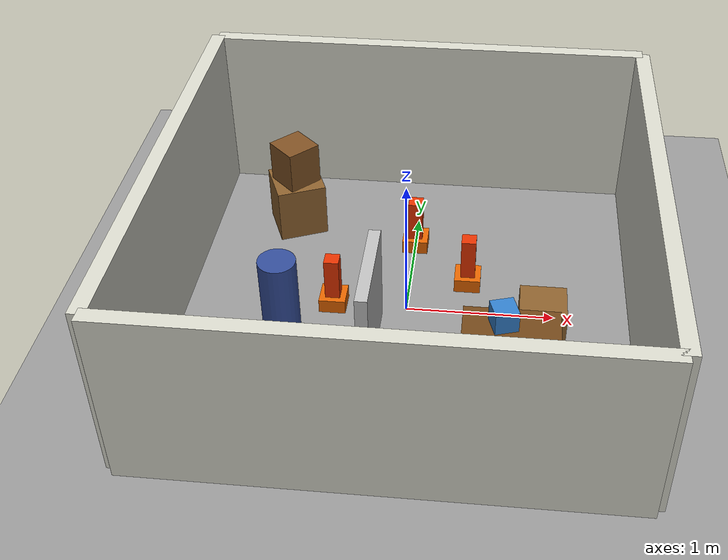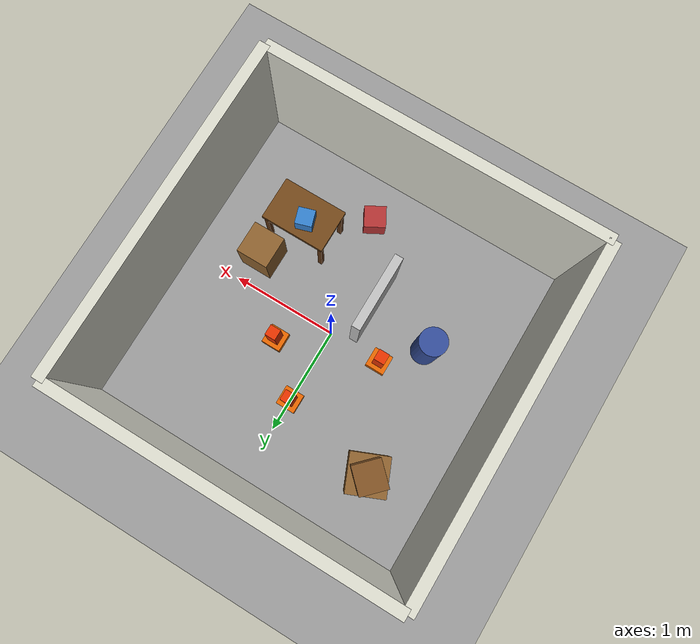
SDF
<?xml version="1.0" ?>
<sdf version="1.6">
  <world name="small_room">

    <physics name="default_physics" type="ode">
      <max_step_size>0.004</max_step_size>
      <real_time_factor>1.0</real_time_factor>
      <real_time_update_rate>250</real_time_update_rate>
    </physics>

    <plugin filename="ignition-gazebo-physics-system"
      name="ignition::gazebo::systems::Physics"/>
    <plugin filename="ignition-gazebo-sensors-system"
      name="ignition::gazebo::systems::Sensors">
      <render_engine>ogre2</render_engine>
    </plugin>
    <plugin filename="ignition-gazebo-scene-broadcaster-system"
      name="ignition::gazebo::systems::SceneBroadcaster"/>
    <plugin filename="ignition-gazebo-user-commands-system"
      name="ignition::gazebo::systems::UserCommands"/>

    <!-- Scene lighting -->
    <scene>
      <ambient>0.6 0.6 0.6 1</ambient>
      <background>0.3 0.3 0.3 1</background>
      <shadows>false</shadows>
    </scene>

    <!-- Main overhead light -->
    <light type="directional" name="sun">
      <cast_shadows>false</cast_shadows>
      <pose>0 0 5 0 0 0</pose>
      <diffuse>0.9 0.9 0.9 1</diffuse>
      <specular>0.3 0.3 0.3 1</specular>
      <attenuation>
        <range>100</range>
        <constant>0.9</constant>
        <linear>0.01</linear>
        <quadratic>0.001</quadratic>
      </attenuation>
      <direction>0 0 -1</direction>
    </light>

    <!-- Secondary fill light -->
    <light type="point" name="fill_light">
      <cast_shadows>false</cast_shadows>
      <pose>0 0 2.5 0 0 0</pose>
      <diffuse>0.6 0.6 0.6 1</diffuse>
      <specular>0.1 0.1 0.1 1</specular>
      <attenuation>
        <range>10</range>
        <constant>0.5</constant>
        <linear>0.1</linear>
        <quadratic>0.01</quadratic>
      </attenuation>
    </light>

    <!-- ==================== GROUND ==================== -->
    <model name="ground_plane">
      <static>true</static>
      <link name="link">
        <collision name="collision">
          <geometry><plane><normal>0 0 1</normal></plane></geometry>
        </collision>
        <visual name="visual">
          <geometry><plane><normal>0 0 1</normal><size>10 10</size></plane></geometry>
          <material>
            <ambient>0.6 0.6 0.6 1</ambient>
            <diffuse>0.6 0.6 0.6 1</diffuse>
            <specular>0.1 0.1 0.1 1</specular>
          </material>
        </visual>
      </link>
    </model>

    <!-- ==================== WALLS ==================== -->

    <!-- North wall -->
    <model name="wall_north">
      <static>true</static>
      <pose>0 1.55 0.6 0 0 0</pose>
      <link name="link">
        <collision name="collision">
          <geometry><box><size>3.1 0.1 1.2</size></box></geometry>
        </collision>
        <visual name="visual">
          <geometry><box><size>3.1 0.1 1.2</size></box></geometry>
          <material>
            <ambient>0.85 0.85 0.80 1</ambient>
            <diffuse>0.85 0.85 0.80 1</diffuse>
          </material>
        </visual>
      </link>
    </model>

    <!-- South wall -->
    <model name="wall_south">
      <static>true</static>
      <pose>0 -1.55 0.6 0 0 0</pose>
      <link name="link">
        <collision name="collision">
          <geometry><box><size>3.1 0.1 1.2</size></box></geometry>
        </collision>
        <visual name="visual">
          <geometry><box><size>3.1 0.1 1.2</size></box></geometry>
          <material>
            <ambient>0.85 0.85 0.80 1</ambient>
            <diffuse>0.85 0.85 0.80 1</diffuse>
          </material>
        </visual>
      </link>
    </model>

    <!-- East wall -->
    <model name="wall_east">
      <static>true</static>
      <pose>1.55 0 0.6 0 0 0</pose>
      <link name="link">
        <collision name="collision">
          <geometry><box><size>0.1 3.1 1.2</size></box></geometry>
        </collision>
        <visual name="visual">
          <geometry><box><size>0.1 3.1 1.2</size></box></geometry>
          <material>
            <ambient>0.85 0.85 0.80 1</ambient>
            <diffuse>0.85 0.85 0.80 1</diffuse>
          </material>
        </visual>
      </link>
    </model>

    <!-- West wall -->
    <model name="wall_west">
      <static>true</static>
      <pose>-1.55 0 0.6 0 0 0</pose>
      <link name="link">
        <collision name="collision">
          <geometry><box><size>0.1 3.1 1.2</size></box></geometry>
        </collision>
        <visual name="visual">
          <geometry><box><size>0.1 3.1 1.2</size></box></geometry>
          <material>
            <ambient>0.85 0.85 0.80 1</ambient>
            <diffuse>0.85 0.85 0.80 1</diffuse>
          </material>
        </visual>
      </link>
    </model>

    <!-- ==================== TABLE ==================== -->
    <!-- Tabletop -->
    <model name="table_top">
      <static>true</static>
      <pose>0.7 -0.7 0.48 0 0 0</pose>
      <link name="link">
        <collision name="collision">
          <geometry><box><size>0.6 0.4 0.04</size></box></geometry>
        </collision>
        <visual name="visual">
          <geometry><box><size>0.6 0.4 0.04</size></box></geometry>
          <material>
            <ambient>0.45 0.28 0.10 1</ambient>
            <diffuse>0.45 0.28 0.10 1</diffuse>
          </material>
        </visual>
      </link>
    </model>

    <!-- Table leg FL -->
    <model name="table_leg_fl">
      <static>true</static>
      <pose>0.97 -0.53 0.24 0 0 0</pose>
      <link name="link">
        <collision name="collision">
          <geometry><box><size>0.04 0.04 0.48</size></box></geometry>
        </collision>
        <visual name="visual">
          <geometry><box><size>0.04 0.04 0.48</size></box></geometry>
          <material>
            <ambient>0.35 0.20 0.08 1</ambient>
            <diffuse>0.35 0.20 0.08 1</diffuse>
          </material>
        </visual>
      </link>
    </model>

    <!-- Table leg FR -->
    <model name="table_leg_fr">
      <static>true</static>
      <pose>0.43 -0.53 0.24 0 0 0</pose>
      <link name="link">
        <collision name="collision">
          <geometry><box><size>0.04 0.04 0.48</size></box></geometry>
        </collision>
        <visual name="visual">
          <geometry><box><size>0.04 0.04 0.48</size></box></geometry>
          <material>
            <ambient>0.35 0.20 0.08 1</ambient>
            <diffuse>0.35 0.20 0.08 1</diffuse>
          </material>
        </visual>
      </link>
    </model>

    <!-- Table leg BL -->
    <model name="table_leg_bl">
      <static>true</static>
      <pose>0.97 -0.87 0.24 0 0 0</pose>
      <link name="link">
        <collision name="collision">
          <geometry><box><size>0.04 0.04 0.48</size></box></geometry>
        </collision>
        <visual name="visual">
          <geometry><box><size>0.04 0.04 0.48</size></box></geometry>
          <material>
            <ambient>0.35 0.20 0.08 1</ambient>
            <diffuse>0.35 0.20 0.08 1</diffuse>
          </material>
        </visual>
      </link>
    </model>

    <!-- Table leg BR -->
    <model name="table_leg_br">
      <static>true</static>
      <pose>0.43 -0.87 0.24 0 0 0</pose>
      <link name="link">
        <collision name="collision">
          <geometry><box><size>0.04 0.04 0.48</size></box></geometry>
        </collision>
        <visual name="visual">
          <geometry><box><size>0.04 0.04 0.48</size></box></geometry>
          <material>
            <ambient>0.35 0.20 0.08 1</ambient>
            <diffuse>0.35 0.20 0.08 1</diffuse>
          </material>
        </visual>
      </link>
    </model>

    <!-- ==================== CRATES ==================== -->

    <!-- Crate 1 - NW area -->
    <model name="crate_1">
      <static>true</static>
      <pose>-0.9 0.9 0.2 0 0 0.4</pose>
      <link name="link">
        <collision name="collision">
          <geometry><box><size>0.35 0.35 0.4</size></box></geometry>
        </collision>
        <visual name="visual">
          <geometry><box><size>0.35 0.35 0.4</size></box></geometry>
          <material>
            <ambient>0.55 0.38 0.18 1</ambient>
            <diffuse>0.55 0.38 0.18 1</diffuse>
          </material>
        </visual>
      </link>
    </model>

    <!-- Crate 2 - stacked on crate 1 (smaller) -->
    <model name="crate_2">
      <static>true</static>
      <pose>-0.9 0.9 0.55 0 0 0.8</pose>
      <link name="link">
        <collision name="collision">
          <geometry><box><size>0.25 0.25 0.3</size></box></geometry>
        </collision>
        <visual name="visual">
          <geometry><box><size>0.25 0.25 0.3</size></box></geometry>
          <material>
            <ambient>0.50 0.32 0.14 1</ambient>
            <diffuse>0.50 0.32 0.14 1</diffuse>
          </material>
        </visual>
      </link>
    </model>

    <!-- Crate 3 - SE area -->
    <model name="crate_3">
      <static>true</static>
      <pose>0.9 -0.3 0.2 0 0 0</pose>
      <link name="link">
        <collision name="collision">
          <geometry><box><size>0.3 0.3 0.4</size></box></geometry>
        </collision>
        <visual name="visual">
          <geometry><box><size>0.3 0.3 0.4</size></box></geometry>
          <material>
            <ambient>0.55 0.38 0.18 1</ambient>
            <diffuse>0.55 0.38 0.18 1</diffuse>
          </material>
        </visual>
      </link>
    </model>

    <!-- ==================== TRAFFIC CONES ==================== -->

    <!-- Cone 1 base -->
    <model name="cone_1_base">
      <static>true</static>
      <pose>0.0 0.7 0.05 0 0 0</pose>
      <link name="link">
        <collision name="collision">
          <geometry><box><size>0.18 0.18 0.1</size></box></geometry>
        </collision>
        <visual name="visual">
          <geometry><box><size>0.18 0.18 0.1</size></box></geometry>
          <material>
            <ambient>0.9 0.4 0.0 1</ambient>
            <diffuse>0.9 0.4 0.0 1</diffuse>
          </material>
        </visual>
      </link>
    </model>

    <!-- Cone 1 body -->
    <model name="cone_1_body">
      <static>true</static>
      <pose>0.0 0.7 0.25 0 0 0</pose>
      <link name="link">
        <collision name="collision">
          <geometry><box><size>0.10 0.10 0.30</size></box></geometry>
        </collision>
        <visual name="visual">
          <geometry><box><size>0.10 0.10 0.30</size></box></geometry>
          <material>
            <ambient>0.9 0.2 0.0 1</ambient>
            <diffuse>0.9 0.2 0.0 1</diffuse>
          </material>
        </visual>
      </link>
    </model>

    <!-- Cone 2 base -->
    <model name="cone_2_base">
      <static>true</static>
      <pose>-0.5 0.0 0.05 0 0 0</pose>
      <link name="link">
        <collision name="collision">
          <geometry><box><size>0.18 0.18 0.1</size></box></geometry>
        </collision>
        <visual name="visual">
          <geometry><box><size>0.18 0.18 0.1</size></box></geometry>
          <material>
            <ambient>0.9 0.4 0.0 1</ambient>
            <diffuse>0.9 0.4 0.0 1</diffuse>
          </material>
        </visual>
      </link>
    </model>

    <!-- Cone 2 body -->
    <model name="cone_2_body">
      <static>true</static>
      <pose>-0.5 0.0 0.25 0 0 0</pose>
      <link name="link">
        <collision name="collision">
          <geometry><box><size>0.10 0.10 0.30</size></box></geometry>
        </collision>
        <visual name="visual">
          <geometry><box><size>0.10 0.10 0.30</size></box></geometry>
          <material>
            <ambient>0.9 0.2 0.0 1</ambient>
            <diffuse>0.9 0.2 0.0 1</diffuse>
          </material>
        </visual>
      </link>
    </model>

    <!-- Cone 3 base -->
    <model name="cone_3_base">
      <static>true</static>
      <pose>0.4 0.3 0.05 0 0 0</pose>
      <link name="link">
        <collision name="collision">
          <geometry><box><size>0.18 0.18 0.1</size></box></geometry>
        </collision>
        <visual name="visual">
          <geometry><box><size>0.18 0.18 0.1</size></box></geometry>
          <material>
            <ambient>0.9 0.4 0.0 1</ambient>
            <diffuse>0.9 0.4 0.0 1</diffuse>
          </material>
        </visual>
      </link>
    </model>

    <!-- Cone 3 body -->
    <model name="cone_3_body">
      <static>true</static>
      <pose>0.4 0.3 0.25 0 0 0</pose>
      <link name="link">
        <collision name="collision">
          <geometry><box><size>0.10 0.10 0.30</size></box></geometry>
        </collision>
        <visual name="visual">
          <geometry><box><size>0.10 0.10 0.30</size></box></geometry>
          <material>
            <ambient>0.9 0.2 0.0 1</ambient>
            <diffuse>0.9 0.2 0.0 1</diffuse>
          </material>
        </visual>
      </link>
    </model>

    <!-- ==================== SHORT DIVIDER WALL ==================== -->
    <model name="divider">
      <static>true</static>
      <pose>-0.2 -0.4 0.35 0 0 0</pose>
      <link name="link">
        <collision name="collision">
          <geometry><box><size>0.08 0.7 0.7</size></box></geometry>
        </collision>
        <visual name="visual">
          <geometry><box><size>0.08 0.7 0.7</size></box></geometry>
          <material>
            <ambient>0.75 0.75 0.75 1</ambient>
            <diffuse>0.75 0.75 0.75 1</diffuse>
          </material>
        </visual>
      </link>
    </model>

    <!-- ==================== BARREL (cylinder approximated) ==================== -->
    <!-- Barrel body -->
    <model name="barrel">
      <static>true</static>
      <pose>-0.8 -0.3 0.3 0 0 0</pose>
      <link name="link">
        <collision name="collision">
          <geometry><box><size>0.25 0.25 0.6</size></box></geometry>
        </collision>
        <visual name="visual">
          <geometry><cylinder><radius>0.125</radius><length>0.6</length></cylinder></geometry>
          <material>
            <ambient>0.2 0.3 0.6 1</ambient>
            <diffuse>0.2 0.3 0.6 1</diffuse>
          </material>
        </visual>
      </link>
    </model>

    <!-- ==================== SMALL BOXES (scattered) ==================== -->

    <!-- Small box 1 on table -->
    <model name="box_on_table">
      <static>true</static>
      <pose>0.65 -0.65 0.57 0 0 0.3</pose>
      <link name="link">
        <collision name="collision">
          <geometry><box><size>0.15 0.15 0.15</size></box></geometry>
        </collision>
        <visual name="visual">
          <geometry><box><size>0.15 0.15 0.15</size></box></geometry>
          <material>
            <ambient>0.2 0.5 0.8 1</ambient>
            <diffuse>0.2 0.5 0.8 1</diffuse>
          </material>
        </visual>
      </link>
    </model>

    <!-- Small box 2 floor -->
    <model name="small_box_floor">
      <static>true</static>
      <pose>0.2 -1.1 0.1 0 0 0.5</pose>
      <link name="link">
        <collision name="collision">
          <geometry><box><size>0.2 0.2 0.2</size></box></geometry>
        </collision>
        <visual name="visual">
          <geometry><box><size>0.2 0.2 0.2</size></box></geometry>
          <material>
            <ambient>0.7 0.2 0.2 1</ambient>
            <diffuse>0.7 0.2 0.2 1</diffuse>
          </material>
        </visual>
      </link>
    </model>

  </world>
</sdf>
